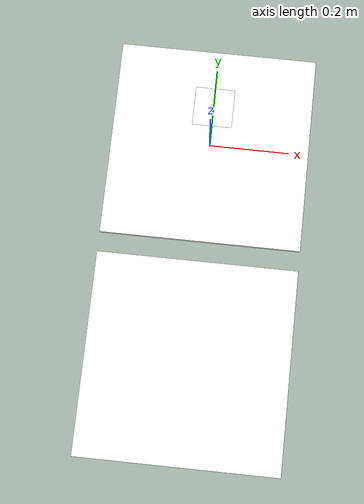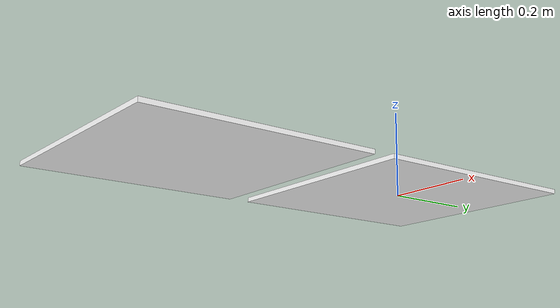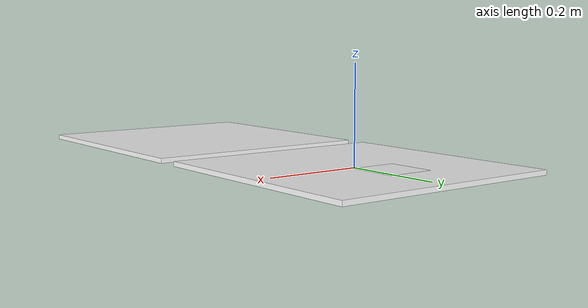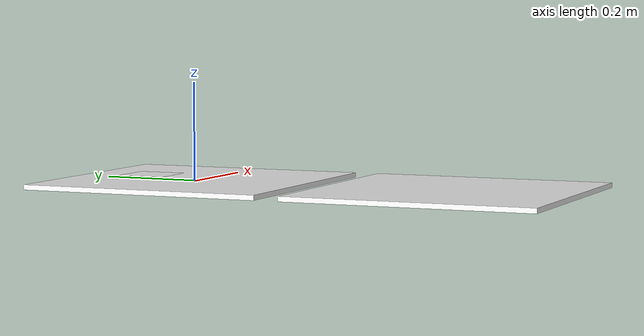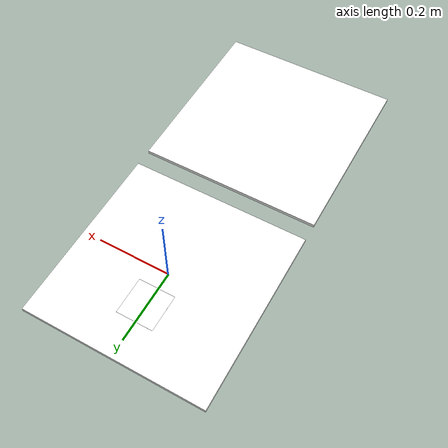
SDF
<?xml version="1.0"?>

<sdf version="1.7">
  <model name="helipad">
    <static>true</static>

    <link name="pad">
      <pose>0 0 0 0 0 1.5707</pose>
      <visual name='visual'>
        <geometry>
          <box>
            <size>0.5 0.5 0.01</size>
          </box>
        </geometry>
        <material>
          <ambient>1 1 1 1</ambient>
          <diffuse>1 1 1 1</diffuse>
          <specular>0 0 0 1</specular>
          <pbr>
            <metal>
              <metalness>0</metalness>
              <roughness>0.9</roughness>
              <albedo_map>
                materials/textures/helipad.png
              </albedo_map>
            </metal>
          </pbr>
        </material>
      </visual>
      <collision name='collision'>
        <geometry>
          <box>
            <size>0.5 0.5 0.01</size>
          </box>
        </geometry>
      </collision>
    </link>

    <link name='landing_tag'>
      <pose relative_to="pad">0.1 0 0.01 0 0 0</pose>
      <visual name='visual'>
        <geometry>
          <box><size>0.1 0.1 0.0001</size></box>
        </geometry>
        <material>
          <ambient>1 1 1 1</ambient>
          <diffuse>1 1 1 1</diffuse>
          <specular>0 0 0 1</specular>
          <pbr>
            <metal>
              <metalness>0</metalness>
              <roughness>0.9</roughness>
              <albedo_map>
                materials/textures/tag36h11-585.png
              </albedo_map>
            </metal>
          </pbr>
        </material>
      </visual>
    </link>

    <link name='approach_tag'>
      <pose relative_to='pad'>-0.55 0 0 0 0 0</pose>
      <visual name="visual">
        <geometry>
          <box>
            <size>0.5 0.5 0.01</size>
          </box>
        </geometry>
        <material>
          <ambient>1 1 1 1</ambient>
          <diffuse>1 1 1 1</diffuse>
          <specular>0 0 0 1</specular>
          <pbr>
            <metal>
              <metalness>0</metalness>
              <roughness>0.9</roughness>
              <albedo_map>
                materials/textures/tag36h11-586.png
              </albedo_map>
            </metal>
          </pbr>
        </material>
      </visual>
    </link>
  </model>
</sdf>
